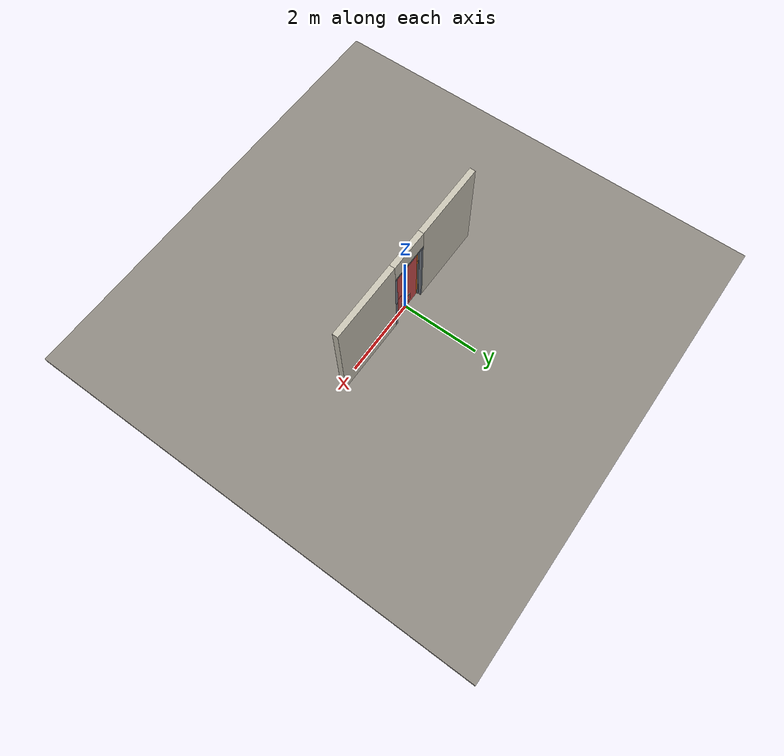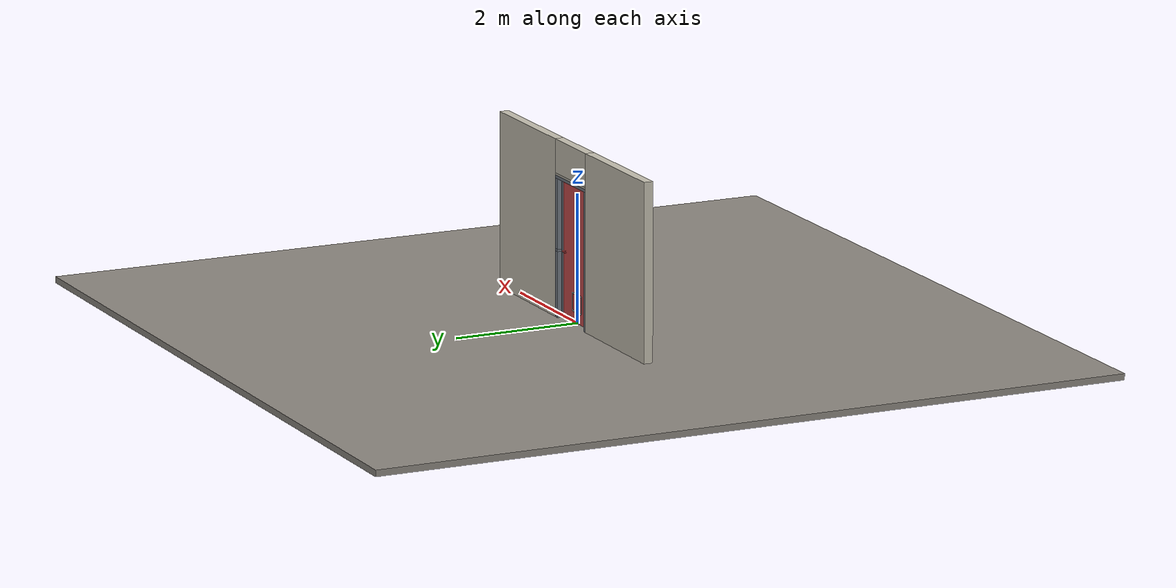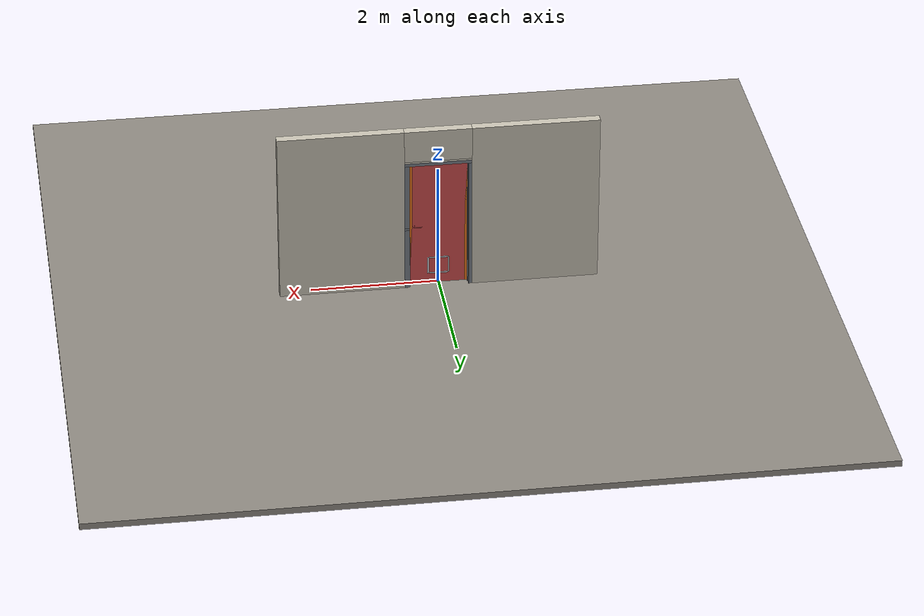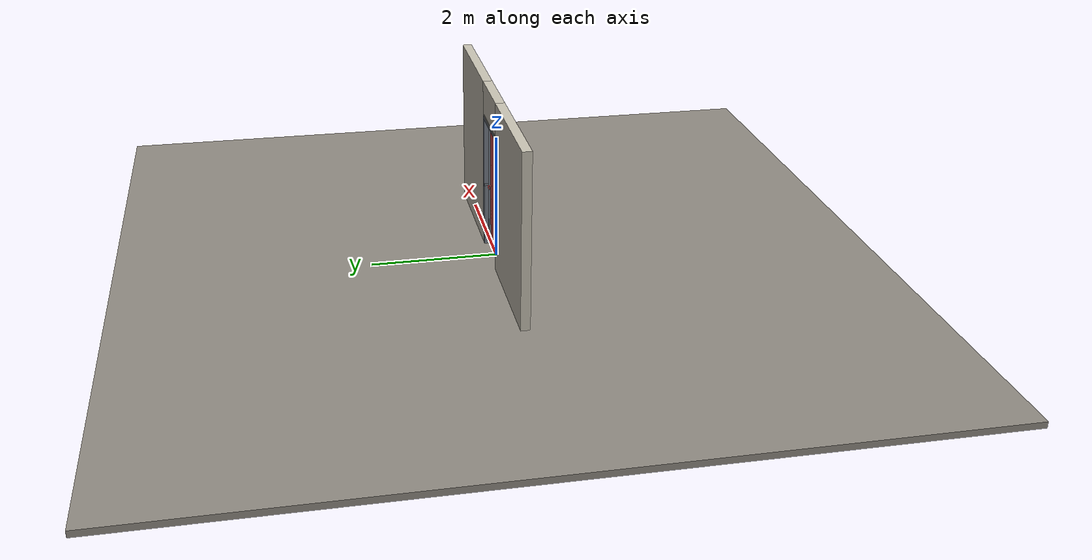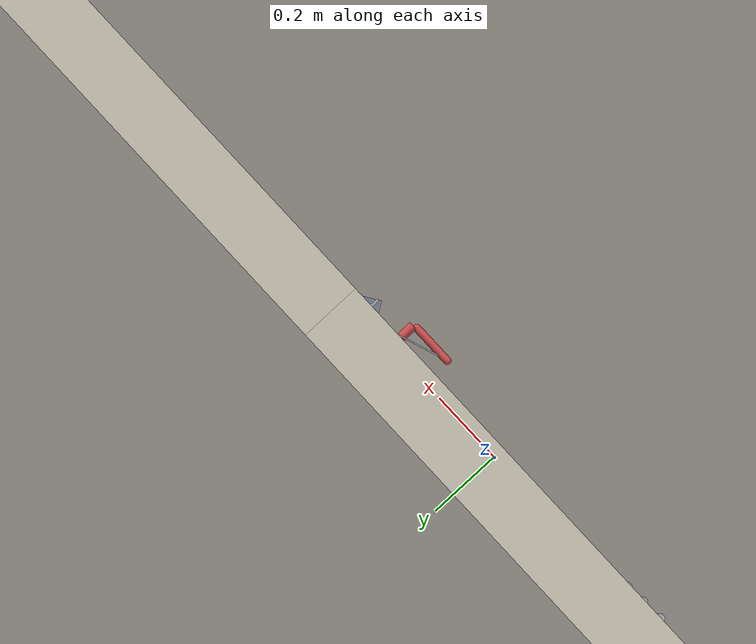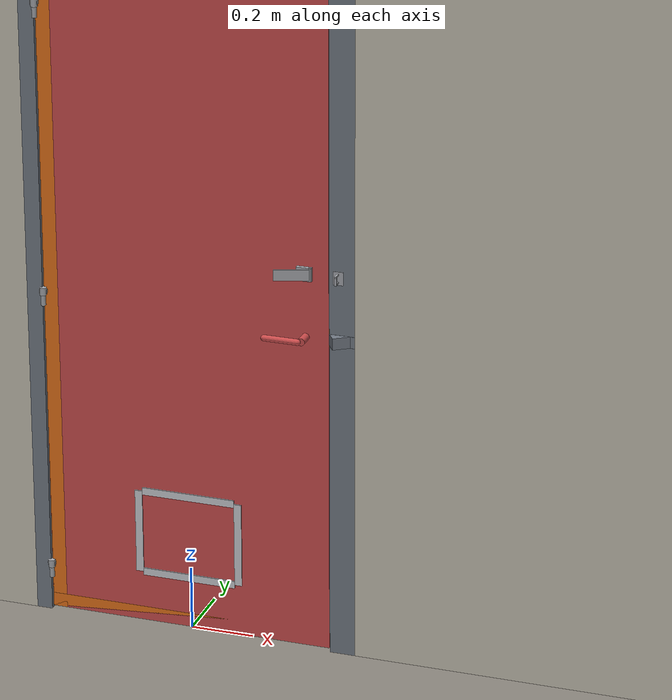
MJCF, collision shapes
<?xml version="1.0" ?>
<mujoco model="db0040_swing_single_full">
  <compiler angle="radian" meshdir="../../hardware" texturedir="../../textures" autolimits="true" inertiafromgeom="false"/>
  <option timestep="0.002" integrator="implicitfast" cone="elliptic" impratio="10" noslip_iterations="3">
    <flag multiccd="enable"/>
  </option>
  <size memory="16M"/>
  <default>
    <geom condim="4" solref="0.005 1" solimp="0.95 0.99 0.001"/>
    <joint solreflimit="0.005 1" solimplimit="0.95 0.99 0.001"/>
    <tendon solreflimit="0.005 1"/>
    <equality solref="0.002 1"/>
  </default>
  <visual>
    <headlight ambient="0.4 0.4 0.4" diffuse="0.7 0.7 0.7" specular="0.2 0.2 0.2"/>
    <quality shadowsize="4096"/>
    <map znear="0.01" zfar="60"/>
  </visual>
  <asset>
    <mesh name="lever_9f02b544cf" file="lever_9f02b544cf.obj"/>
    <mesh name="strap_hinge_78d1bbb966" file="strap_hinge_78d1bbb966.obj"/>
    <material name="mat_floor" rgba="0.55 0.53 0.5 1" specular="0.2" shininess="0.15" reflectance="0"/>
    <material name="mat_wall" rgba="0.78 0.76 0.7 1" specular="0.2" shininess="0.1" reflectance="0"/>
    <material name="mat_leaf" rgba="0.9 0.45 0.1 1" specular="0.2" shininess="0.47" reflectance="0"/>
    <material name="mat_mesh_infill" rgba="0.6 0.62 0.64 0.55" specular="0.68" shininess="0.3" reflectance="0.1"/>
    <material name="mat_hinge" rgba="0.65 0.66 0.68 1" specular="0.74" shininess="0.5" reflectance="0.36"/>
    <material name="mat_op_nickel_satin" rgba="0.72 0.7 0.66 1" specular="0.8" shininess="0.65" reflectance="0.4"/>
    <material name="mat_trim" rgba="0.85 0.66 0.3 1" specular="0.8" shininess="0.75" reflectance="0.4"/>
    <material name="mat_bolt" rgba="0.85 0.66 0.3 1" specular="0.8" shininess="0.75" reflectance="0.4"/>
    <material name="mat_op_steel_galvanized" rgba="0.65 0.66 0.68 1" specular="0.74" shininess="0.5" reflectance="0.36"/>
    <material name="mat_padlock" rgba="0.85 0.66 0.3 1" specular="0.8" shininess="0.75" reflectance="0.4"/>
    <material name="mat_frame" rgba="0.45 0.48 0.52 1" specular="0.32" shininess="0.6" reflectance="0.08"/>
    <material name="mat_vent" rgba="0.8 0.81 0.83 1" specular="0.8" shininess="0.6" reflectance="0.4"/>
    <texture name="skybox" type="skybox" builtin="gradient" rgb1="0.6 0.7 0.85" rgb2="0.9 0.92 0.95" width="256" height="256"/>
  </asset>
  <worldbody>
    <light name="sun" pos="1.5 -2.5 4" dir="-0.3 0.5 -0.8" directional="true" diffuse="0.8 0.8 0.8" specular="0.3 0.3 0.3" castshadow="true"/>
    <light name="fill" pos="-1.5 2.5 3" dir="0.3 -0.5 -0.7" directional="true" diffuse="0.35 0.35 0.4" castshadow="false"/>
    <camera name="robot_view" pos="0 -2.589812 1.812087" xyaxes="1 0 0 0 0.26963 0.962964" fovy="52"/>
    <camera name="far_view" pos="0 2.685812 1.812087" xyaxes="-1 0 0 0 -0.26963 0.962964" fovy="52"/>
    <camera name="iso" pos="2.004737 -2.167762 2.234138" xyaxes="0.741536 0.670913 0 -0.242917 0.268487 0.932151" fovy="46"/>
    <camera name="detail_handle" pos="0.4665 -0.8725 1.32" xyaxes="0.97561 0.219512 0 -0.070934 0.315262 0.94635" fovy="38"/>
    <geom name="floor" type="box" size="6 6 0.05" pos="0 0 -0.05" material="mat_floor" group="0" contype="1" conaffinity="1" friction="0.8 0.005 0.0001" density="2400"/>
    <geom name="wall_left" type="box" size="0.99475 0.0725 1.3735" pos="-1.50525 0.048 1.3735" material="mat_wall" group="0" contype="1" conaffinity="1" friction="0.6 0.005 0.0001" density="800"/>
    <geom name="wall_right" type="box" size="0.97975 0.0725 1.3735" pos="1.52025 0.048 1.3735" material="mat_wall" group="0" contype="1" conaffinity="1" friction="0.6 0.005 0.0001" density="800"/>
    <geom name="wall_header" type="box" size="0.5255 0.0725 0.26" pos="0.015 0.048 2.487" material="mat_wall" group="0" contype="1" conaffinity="1" friction="0.6 0.005 0.0001" density="800"/>
    <geom name="hinge_pintle_0" type="cylinder" size="0.008 0.02" pos="-0.4575 -0.0245 0.133" material="mat_hinge" group="1" contype="0" conaffinity="0" density="7850"/>
    <geom name="hinge_pintle_1" type="cylinder" size="0.008 0.02" pos="-0.4575 -0.0245 1.05" material="mat_hinge" group="1" contype="0" conaffinity="0" density="7850"/>
    <geom name="hinge_pintle_2" type="cylinder" size="0.008 0.02" pos="-0.4575 -0.0245 1.967" material="mat_hinge" group="1" contype="0" conaffinity="0" density="7850"/>
    <geom name="leaf_staple_leg_n" type="box" size="0.003 0.0025 0.013" pos="0.4885 -0.0375 1.2275" quat="0.707107 0.707107 0 0" material="mat_op_steel_galvanized" group="0" contype="1" conaffinity="1" friction="0.6 0.005 0.0001" density="7800"/>
    <geom name="leaf_staple_leg_p" type="box" size="0.003 0.0025 0.013" pos="0.4885 -0.0375 1.2525" quat="0.707107 0.707107 0 0" material="mat_op_steel_galvanized" group="0" contype="1" conaffinity="1" friction="0.6 0.005 0.0001" density="7800"/>
    <geom name="leaf_staple_bridge" type="box" size="0.003 0.015 0.0025" pos="0.4885 -0.048 1.24" quat="0.707107 0.707107 0 0" material="mat_op_steel_galvanized" group="0" contype="1" conaffinity="1" friction="0.6 0.005 0.0001" density="7800"/>
    <geom name="leaf_staple_base" type="box" size="0.016 0.021 0.001" pos="0.4885 -0.0255 1.24" quat="0.707107 0.707107 0 0" material="mat_op_steel_galvanized" group="1" contype="0" conaffinity="0" density="7800"/>
    <geom name="jamb_hinge" type="box" size="0.025 0.0725 1.0735" pos="-0.4855 0.048 1.0735" material="mat_frame" group="0" contype="1" conaffinity="1" friction="0.6 0.005 0.0001" density="300"/>
    <geom name="strike_1040_wall_n" type="box" size="0.04 0.0555 0.0183" pos="0.5005 0.065 1.04" material="mat_frame" group="0" contype="1" conaffinity="1" friction="0.6 0.005 0.0001" density="300"/>
    <geom name="strike_1040_wall_p" type="box" size="0.04 0.008 0.0183" pos="0.5005 -0.0175 1.04" material="mat_frame" group="0" contype="1" conaffinity="1" friction="0.6 0.005 0.0001" density="300"/>
    <geom name="strike_1040_ramp" type="box" size="0.04 0.018028 0.0183" pos="0.503782 -0.018312 1.04" quat="0.957092 0 0 0.289784" material="mat_frame" group="0" contype="1" conaffinity="1" friction="0.12 0.005 0.0001" density="300"/>
    <geom name="strike_1040_back" type="box" size="0.0285 0.0095 0.0183" pos="0.512 0 1.04" material="mat_frame" group="0" contype="1" conaffinity="1" friction="0.6 0.005 0.0001" density="300"/>
    <geom name="jamb_strike_0" type="box" size="0.04 0.0725 0.51085" pos="0.5005 0.048 0.51085" material="mat_frame" group="0" contype="1" conaffinity="1" friction="0.6 0.005 0.0001" density="300"/>
    <geom name="jamb_strike_1" type="box" size="0.04 0.0725 0.54435" pos="0.5005 0.048 1.60265" material="mat_frame" group="0" contype="1" conaffinity="1" friction="0.6 0.005 0.0001" density="300"/>
    <geom name="jamb_head" type="box" size="0.5255 0.0725 0.025" pos="0.015 0.048 2.172" material="mat_frame" group="0" contype="1" conaffinity="1" friction="0.6 0.005 0.0001" density="300"/>
    <geom name="head_stud" type="box" size="0.5255 0.0725 0.015" pos="0.015 0.048 2.212" material="mat_wall" group="0" contype="1" conaffinity="1" friction="0.6 0.005 0.0001" density="500"/>
    <geom name="stop_hinge" type="box" size="0.0055 0.016 1.0735" pos="-0.455 0.034 1.0735" material="mat_frame" group="0" contype="1" conaffinity="1" friction="0.6 0.005 0.0001" density="300"/>
    <geom name="stop_strike" type="box" size="0.0055 0.016 1.0735" pos="0.455 0.034 1.0735" material="mat_frame" group="0" contype="1" conaffinity="1" friction="0.6 0.005 0.0001" density="300"/>
    <geom name="stop_head" type="box" size="0.4605 0.016 0.0055" pos="0 0.034 2.1415" material="mat_frame" group="0" contype="1" conaffinity="1" friction="0.6 0.005 0.0001" density="300"/>
    <geom name="hinge_pintle_0_strap_0" type="box" size="0.0064 0.01775 0.016" pos="-0.4575 0.00075 0.133" material="mat_hinge" group="1" contype="0" conaffinity="0" density="7850"/>
    <geom name="hinge_pintle_1_strap_0" type="box" size="0.0064 0.01775 0.016" pos="-0.4575 0.00075 1.05" material="mat_hinge" group="1" contype="0" conaffinity="0" density="7850"/>
    <geom name="hinge_pintle_2_strap_0" type="box" size="0.0064 0.01775 0.016" pos="-0.4575 0.00075 1.967" material="mat_hinge" group="1" contype="0" conaffinity="0" density="7850"/>
    <site name="approach_point" pos="0 -1.5 0" quat="1 0 0 0" size="0.05" rgba="0.2 0.9 0.2 0.5" group="4"/>
    <site name="goal_point" pos="0 1.5 0" quat="1 0 0 0" size="0.05" rgba="0.2 0.9 0.2 0.5" group="4"/>
    <site name="door_plane_center" pos="0 0 1.0735" quat="1 0 0 0" size="0.02" rgba="0.2 0.9 0.2 0.5" group="4"/>
    <body name="leaf" pos="-0.4605 0 0">
      <inertial pos="0.442398 -0.001338 1.060587" mass="48.091913" quat="0.498715 0.501203 -0.498837 0.501239" diaginertia="3.418705909 18.918056803 22.32481782"/>
      <joint name="leaf_hinge" type="hinge" axis="0 0 -1" pos="0.003 -0.0245 0" limited="true" range="0 1.745329" damping="0.318966" frictionloss="5.155918" armature="0.02"/>
      <geom name="leaf_slab_col" type="box" size="0.457 0.0175 1.067" pos="0.46 0 1.076" material="mat_leaf" group="3" contype="1" conaffinity="1" rgba="0.8 0.3 0.3 0.25" friction="0.4 0.005 0.0001" density="1"/>
      <geom name="leaf_rail_b" type="box" size="0.457 0.0175 0.0225" pos="0.46 0 0.0315" material="mat_leaf" group="1" contype="0" conaffinity="0" density="1"/>
      <geom name="leaf_rail_t" type="box" size="0.457 0.0175 0.0225" pos="0.46 0 2.1205" material="mat_leaf" group="1" contype="0" conaffinity="0" density="1"/>
      <geom name="leaf_stile_h" type="box" size="0.0225 0.0175 1.067" pos="0.0255 0 1.076" material="mat_leaf" group="1" contype="0" conaffinity="0" density="1"/>
      <geom name="leaf_stile_l" type="box" size="0.0225 0.0175 1.067" pos="0.8945 0 1.076" material="mat_leaf" group="1" contype="0" conaffinity="0" density="1"/>
      <geom name="leaf_mesh" type="box" size="0.412 0.0015 1.022" pos="0.46 0 1.076" material="mat_mesh_infill" group="1" contype="0" conaffinity="0" density="1"/>
      <geom name="hinge_strap_0" type="mesh" mesh="strap_hinge_78d1bbb966" pos="0.003 -0.0205 0.159" material="mat_hinge" group="1" contype="0" conaffinity="0" density="7850"/>
      <geom name="hinge_strap_eye_0" type="cylinder" size="0.011 0.012" pos="0.003 -0.0245 0.159" material="mat_hinge" group="1" contype="0" conaffinity="0" density="7850"/>
      <geom name="hinge_strap_neck_0" type="box" size="0.012 0.006 0.006" pos="0.003 -0.0225 0.159" material="mat_hinge" group="1" contype="0" conaffinity="0" density="7850"/>
      <geom name="hinge_strap_1" type="mesh" mesh="strap_hinge_78d1bbb966" pos="0.003 -0.0205 1.076" material="mat_hinge" group="1" contype="0" conaffinity="0" density="7850"/>
      <geom name="hinge_strap_eye_1" type="cylinder" size="0.011 0.012" pos="0.003 -0.0245 1.076" material="mat_hinge" group="1" contype="0" conaffinity="0" density="7850"/>
      <geom name="hinge_strap_neck_1" type="box" size="0.012 0.006 0.006" pos="0.003 -0.0225 1.076" material="mat_hinge" group="1" contype="0" conaffinity="0" density="7850"/>
      <geom name="hinge_strap_2" type="mesh" mesh="strap_hinge_78d1bbb966" pos="0.003 -0.0205 1.993" material="mat_hinge" group="1" contype="0" conaffinity="0" density="7850"/>
      <geom name="hinge_strap_eye_2" type="cylinder" size="0.011 0.012" pos="0.003 -0.0245 1.993" material="mat_hinge" group="1" contype="0" conaffinity="0" density="7850"/>
      <geom name="hinge_strap_neck_2" type="box" size="0.012 0.006 0.006" pos="0.003 -0.0225 1.993" material="mat_hinge" group="1" contype="0" conaffinity="0" density="7850"/>
      <geom name="leaf_latch_bolt_faceplate" type="box" size="0.0006 0.014 0.0283" pos="0.9164 0 1.04" material="mat_bolt" group="1" contype="0" conaffinity="0" density="8500"/>
      <geom name="leaf_hasp_plate" type="box" size="0.024 0.0215 0.0055" pos="0.842 -0.023 1.24" quat="0.707107 0.707107 0 0" material="mat_op_steel_galvanized" group="1" contype="0" conaffinity="0" density="7800"/>
      <geom name="louver_vent_stile_n_l" type="box" size="0.012 0.002 0.137" pos="0.298 -0.0195 0.314" material="mat_vent" group="2" contype="0" conaffinity="0" density="2700"/>
      <geom name="louver_vent_stile_n_r" type="box" size="0.012 0.002 0.137" pos="0.622 -0.0195 0.314" material="mat_vent" group="2" contype="0" conaffinity="0" density="2700"/>
      <geom name="louver_vent_rail_n_b" type="box" size="0.15 0.002 0.012" pos="0.46 -0.0195 0.177" material="mat_vent" group="2" contype="0" conaffinity="0" density="2700"/>
      <geom name="louver_vent_rail_n_t" type="box" size="0.15 0.002 0.012" pos="0.46 -0.0195 0.451" material="mat_vent" group="2" contype="0" conaffinity="0" density="2700"/>
      <geom name="louver_vent_stile_p_l" type="box" size="0.012 0.002 0.137" pos="0.298 0.0195 0.314" material="mat_vent" group="2" contype="0" conaffinity="0" density="2700"/>
      <geom name="louver_vent_stile_p_r" type="box" size="0.012 0.002 0.137" pos="0.622 0.0195 0.314" material="mat_vent" group="2" contype="0" conaffinity="0" density="2700"/>
      <geom name="louver_vent_rail_p_b" type="box" size="0.15 0.002 0.012" pos="0.46 0.0195 0.177" material="mat_vent" group="2" contype="0" conaffinity="0" density="2700"/>
      <geom name="louver_vent_rail_p_t" type="box" size="0.15 0.002 0.012" pos="0.46 0.0195 0.451" material="mat_vent" group="2" contype="0" conaffinity="0" density="2700"/>
      <geom name="louver_vent_slat_0" type="box" size="0.15 0.0015 0.015" pos="0.46 0 0.209833" quat="0.965926 -0.258819 0 0" material="mat_vent" group="2" contype="0" conaffinity="0" density="2700"/>
      <geom name="louver_vent_slat_1" type="box" size="0.15 0.0015 0.015" pos="0.46 0 0.2515" quat="0.965926 -0.258819 0 0" material="mat_vent" group="2" contype="0" conaffinity="0" density="2700"/>
      <geom name="louver_vent_slat_2" type="box" size="0.15 0.0015 0.015" pos="0.46 0 0.293167" quat="0.965926 -0.258819 0 0" material="mat_vent" group="2" contype="0" conaffinity="0" density="2700"/>
      <geom name="louver_vent_slat_3" type="box" size="0.15 0.0015 0.015" pos="0.46 0 0.334833" quat="0.965926 -0.258819 0 0" material="mat_vent" group="2" contype="0" conaffinity="0" density="2700"/>
      <geom name="louver_vent_slat_4" type="box" size="0.15 0.0015 0.015" pos="0.46 0 0.3765" quat="0.965926 -0.258819 0 0" material="mat_vent" group="2" contype="0" conaffinity="0" density="2700"/>
      <geom name="louver_vent_slat_5" type="box" size="0.15 0.0015 0.015" pos="0.46 0 0.418167" quat="0.965926 -0.258819 0 0" material="mat_vent" group="2" contype="0" conaffinity="0" density="2700"/>
      <site name="leaf_edge_mid" pos="0.917 0 1.067" quat="1 0 0 0" size="0.02" rgba="0.2 0.9 0.2 0.5" group="4"/>
      <body name="leaf_handle" pos="0.847 0 1.04">
        <inertial pos="-0.028779 0 0" mass="0.970196" quat="0 0.707107 0.707107 0" diaginertia="0.001765339 0.003138972 0.004726252"/>
        <joint name="leaf_handle_hinge" type="hinge" axis="0 -1 0" limited="true" range="0 0.96" damping="0.245623" frictionloss="0.048" stiffness="1.2" springref="-0.458333" armature="0.01"/>
        <geom name="leaf_handle_spindle" type="cylinder" size="0.006 0.0255" pos="0 0 0" quat="0.707107 -0.707107 0 0" material="mat_op_nickel_satin" group="1" contype="0" conaffinity="0" density="7850"/>
        <geom name="leaf_handle_lever_n" type="mesh" mesh="lever_9f02b544cf" pos="0 -0.0175 0" quat="0.707107 0.707107 0 0" material="mat_op_nickel_satin" group="1" contype="0" conaffinity="0" density="3000"/>
        <geom name="leaf_handle_lever_col_n" type="capsule" size="0.0095 0.053" pos="-0.0625 -0.0725 0" quat="0.707107 0 -0.707107 0" material="mat_op_nickel_satin" group="3" contype="1" conaffinity="1" rgba="0.8 0.3 0.3 0.25" friction="0.7 0.01 0.0001" density="3000"/>
        <geom name="leaf_handle_hub_col_n" type="cylinder" size="0.012 0.022" pos="0 -0.0475 0" quat="0.707107 -0.707107 0 0" material="mat_op_nickel_satin" group="3" contype="1" conaffinity="1" rgba="0.8 0.3 0.3 0.25" friction="0.6 0.005 0.0001" density="3000"/>
        <geom name="leaf_handle_lever_p" type="mesh" mesh="lever_9f02b544cf" pos="0 0.0175 0" quat="-0.707107 0.707107 0 0" material="mat_op_nickel_satin" group="1" contype="0" conaffinity="0" density="3000"/>
        <geom name="leaf_handle_lever_col_p" type="capsule" size="0.0095 0.053" pos="-0.0625 0.0725 0" quat="0.707107 0 -0.707107 0" material="mat_op_nickel_satin" group="3" contype="1" conaffinity="1" rgba="0.8 0.3 0.3 0.25" friction="0.7 0.01 0.0001" density="3000"/>
        <geom name="leaf_handle_hub_col_p" type="cylinder" size="0.012 0.022" pos="0 0.0475 0" quat="0.707107 -0.707107 0 0" material="mat_op_nickel_satin" group="3" contype="1" conaffinity="1" rgba="0.8 0.3 0.3 0.25" friction="0.6 0.005 0.0001" density="3000"/>
        <site name="leaf_handle_grip_n" pos="-0.1 -0.0725 0" quat="1 0 0 0" size="0.012" rgba="0.2 0.9 0.2 0.5" group="4"/>
        <site name="leaf_handle_grip_p" pos="-0.1 0.0725 0" quat="1 0 0 0" size="0.012" rgba="0.2 0.9 0.2 0.5" group="4"/>
      </body>
      <body name="leaf_latch_bolt" pos="0.917 0 1.04">
        <inertial pos="-0.0055 0 0" mass="0.074627" quat="0.92388 -0.382683 0 0" diaginertia="0.000002271 0.000013255 0.000013255"/>
        <joint name="leaf_latch_bolt_slide" type="slide" axis="-1 0 0" limited="true" range="0 0.019" damping="2" frictionloss="0.3" stiffness="600" springref="-0.01" armature="0.1"/>
        <geom name="leaf_latch_bolt_capsule" type="capsule" size="0.008 0.0165" pos="-0.0055 0 0" quat="0.707107 0 0.707107 0" material="mat_bolt" group="0" contype="1" conaffinity="1" friction="0.2 0.005 0.0001" density="8500"/>
      </body>
      <body name="leaf_hasp" pos="0.862 -0.0285 1.24">
        <inertial pos="-0.042059 -0.012847 0" mass="0.110745" quat="0.695779 -0.695779 -0.126064 0.126064" diaginertia="0.000012666 0.000140194 0.000152371"/>
        <joint name="leaf_hasp_hinge" type="hinge" axis="0 0 -1" limited="true" range="0 2.9" damping="0.02" frictionloss="0.05" armature="0.005" ref="2.8"/>
        <geom name="leaf_hasp_strap" type="box" size="0.0545 0.0175 0.0015" pos="-0.051854 -0.016844 0" quat="0.120185 0.120185 -0.696818 -0.696818" material="mat_op_steel_galvanized" group="0" contype="1" conaffinity="1" friction="0.6 0.005 0.0001" density="7800"/>
        <geom name="leaf_hasp_knuckle" type="cylinder" size="0.0045 0.0215" pos="-0.00134 0.003769 0" quat="0 0.169967 -0.98545 0" material="mat_op_steel_galvanized" group="1" contype="0" conaffinity="0" density="7850"/>
        <site name="leaf_hasp_grip" pos="-0.087208 -0.020392 0" quat="0.169967 0 0 -0.98545" size="0.01" rgba="0.2 0.9 0.2 0.5" group="4"/>
      </body>
    </body>
  </worldbody>
  <tendon>
    <fixed name="leaf_latch_bolt_coupling" limited="true" range="0 10">
      <joint joint="leaf_latch_bolt_slide" coef="1"/>
      <joint joint="leaf_handle_hinge" coef="-0.020879"/>
    </fixed>
  </tendon>
  <sensor>
    <jointpos name="leaf_hinge_pos" joint="leaf_hinge"/>
    <jointvel name="leaf_hinge_vel" joint="leaf_hinge"/>
    <jointpos name="leaf_handle_hinge_pos" joint="leaf_handle_hinge"/>
    <jointvel name="leaf_handle_hinge_vel" joint="leaf_handle_hinge"/>
    <jointpos name="leaf_latch_bolt_slide_pos" joint="leaf_latch_bolt_slide"/>
    <jointvel name="leaf_latch_bolt_slide_vel" joint="leaf_latch_bolt_slide"/>
    <jointpos name="leaf_hasp_hinge_pos" joint="leaf_hasp_hinge"/>
    <jointvel name="leaf_hasp_hinge_vel" joint="leaf_hasp_hinge"/>
  </sensor>
</mujoco>
